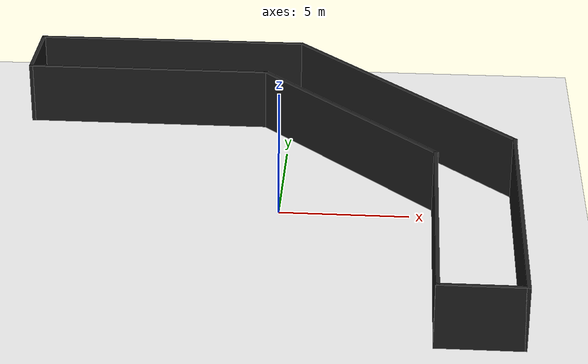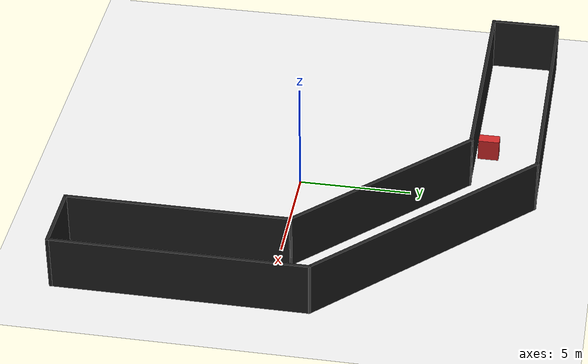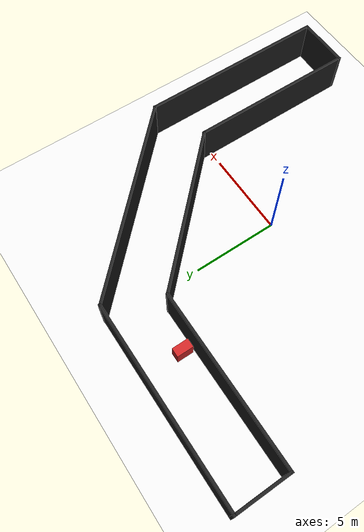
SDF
<sdf version="1.7">
 <world name="default">
  <physics type="ode">
   <real_time_factor>1</real_time_factor>
   <real_time_update_rate>250</real_time_update_rate>
   <max_step_size>0.004</max_step_size>
   <ode>
    <solver>
     <iters>20</iters>
     <type>quick</type>
     <sor>1.3</sor>
     <use_dynamic_moi_rescaling>0</use_dynamic_moi_rescaling>
    </solver>
    <constraints>
     <cfm>0</cfm>
     <erp>0.2</erp>
     <contact_max_correcting_vel>100</contact_max_correcting_vel>
     <contact_surface_layer>0.001</contact_surface_layer>
    </constraints>
   </ode>
  </physics>
  <model name="ground_plane">
   <static>1</static>
   <link name="link">
    <collision name="collision">
     <geometry><plane><normal>0 0 1</normal><size>100 100</size></plane></geometry>
     <surface>
      <contact><collide_bitmask>65535</collide_bitmask></contact>
      <friction><ode><mu>100</mu><mu2>50</mu2></ode></friction>
     </surface>
    </collision>
    <visual name="visual">
     <cast_shadows>0</cast_shadows>
     <geometry><plane><normal>0 0 1</normal><size>100 100</size></plane></geometry>
     <material>
      <script><uri>file://media/materials/scripts/gazebo.material</uri><name>Gazebo/White</name></script>
     </material>
    </visual>
   </link>
  </model>
  <light name="sun" type="directional">
   <pose>0 0 10 0 -0 0</pose>
   <diffuse>0.8 0.8 0.8 1</diffuse>
   <specular>0.2 0.2 0.2 1</specular>
   <attenuation>
    <range>1000</range>
    <constant>0.9</constant>
    <linear>0.01</linear>
    <quadratic>0.001</quadratic>
   </attenuation>
   <direction>-0.5 0.1 -0.9</direction>
   <spot><inner_angle>0</inner_angle><outer_angle>0</outer_angle><falloff>0</falloff></spot>
  </light>
  <model name="basement">
   <pose>-0.937215 0.685257 0 0 -0 0</pose>
   <link name="Wall_19">
    <collision name="Wall_19_Collision">
     <geometry><box><size>3.2 0.15 2.5</size></box></geometry>
     <pose>0 0 1.25 0 -0 0</pose>
    </collision>
    <visual name="Wall_19_Visual">
     <pose>0 0 1.25 0 -0 0</pose>
     <geometry><box><size>3.2 0.15 2.5</size></box></geometry>
     <material>
      <script><uri>file://media/materials/scripts/gazebo.material</uri><name>Gazebo/Black</name></script>
      <ambient>0.8 0.8 0.8 0.8</ambient>
     </material>
     <meta><layer>0</layer></meta>
    </visual>
    <pose>8.39205 -9.94803 0 0 -0 -3.14148</pose>
   </link>
   <link name="Wall_28">
    <collision name="Wall_28_Collision">
     <geometry><box><size>10 0.15 2.5</size></box></geometry>
     <pose>0 0 1.25 0 -0 0</pose>
    </collision>
    <visual name="Wall_28_Visual">
     <pose>0 0 1.25 0 -0 0</pose>
     <geometry><box><size>10 0.15 2.5</size></box></geometry>
     <material>
      <script><uri>file://media/materials/scripts/gazebo.material</uri><name>Gazebo/Black</name></script>
      <ambient>0.8 0.8 0.8 0.8</ambient>
     </material>
     <meta><layer>0</layer></meta>
    </visual>
    <pose>6.86705 -5.02303 0 0 -0 1.57081</pose>
   </link>
   <link name="Wall_38">
    <collision name="Wall_38_Collision">
     <geometry><box><size>11.333 0.15 2.5</size></box></geometry>
     <pose>0 0 1.25 0 -0 0</pose>
    </collision>
    <visual name="Wall_38_Visual">
     <pose>0 0 1.25 0 -0 0</pose>
     <geometry><box><size>11.333 0.15 2.5</size></box></geometry>
     <material>
      <script><uri>file://media/materials/scripts/gazebo.material</uri><name>Gazebo/Black</name></script>
      <ambient>0.8 0.8 0.8 0.8</ambient>
     </material>
     <meta><layer>0</layer></meta>
    </visual>
    <pose>9.91697 -4.35636 0 0 -0 1.5708</pose>
   </link>
   <link name="Wall_42">
    <collision name="Wall_42_Collision">
     <geometry><box><size>10 0.15 2.5</size></box></geometry>
     <pose>0 0 1.25 0 -0 0</pose>
    </collision>
    <visual name="Wall_42_Visual">
     <pose>0 0 1.25 0 -0 0</pose>
     <geometry><box><size>10 0.15 2.5</size></box></geometry>
     <material>
      <script><uri>file://media/materials/scripts/gazebo.material</uri><name>Gazebo/Black</name></script>
      <ambient>0.8 0.8 0.8 0.8</ambient>
     </material>
     <meta><layer>0</layer></meta>
    </visual>
    <pose>3.38447 3.38464 0 0 -0 2.35619</pose>
   </link>
   <link name="Wall_44">
    <collision name="Wall_44_Collision">
     <geometry><box><size>10 0.15 2.5</size></box></geometry>
     <pose>0 0 1.25 0 -0 0</pose>
    </collision>
    <visual name="Wall_44_Visual">
     <pose>0 0 1.25 0 -0 0</pose>
     <geometry><box><size>10 0.15 2.5</size></box></geometry>
     <material>
      <script><uri>file://media/materials/scripts/gazebo.material</uri><name>Gazebo/Black</name></script>
      <ambient>0.8 0.8 0.8 0.8</ambient>
     </material>
     <meta><layer>0</layer></meta>
    </visual>
    <pose>-5.02303 6.86714 0 0 -0 3.14159</pose>
   </link>
   <link name="Wall_46">
    <collision name="Wall_46_Collision">
     <geometry><box><size>3.2 0.15 2.5</size></box></geometry>
     <pose>0 0 1.25 0 -0 0</pose>
    </collision>
    <visual name="Wall_46_Visual">
     <pose>0 0 1.25 0 -0 0</pose>
     <geometry><box><size>3.2 0.15 2.5</size></box></geometry>
     <material>
      <script><uri>file://media/materials/scripts/gazebo.material</uri><name>Gazebo/Black</name></script>
      <ambient>0.8 0.8 0.8 0.8</ambient>
     </material>
     <meta><layer>0</layer></meta>
    </visual>
    <pose>-9.94803 8.39214 0 0 -0 1.5708</pose>
   </link>
   <link name="Wall_48">
    <collision name="Wall_48_Collision">
     <geometry><box><size>11.333 0.15 2.5</size></box></geometry>
     <pose>0 0 1.25 0 -0 0</pose>
    </collision>
    <visual name="Wall_48_Visual">
     <pose>0 0 1.25 0 -0 0</pose>
     <geometry><box><size>11.333 0.15 2.5</size></box></geometry>
     <material>
      <script><uri>file://media/materials/scripts/gazebo.material</uri><name>Gazebo/Black</name></script>
      <ambient>0.8 0.8 0.8 0.8</ambient>
     </material>
     <meta><layer>0</layer></meta>
    </visual>
    <pose>-4.35653 9.91714 0 0 -0 0</pose>
   </link>
   <link name="Wall_50">
    <collision name="Wall_50_Collision">
     <geometry><box><size>12.4282 0.15 2.5</size></box></geometry>
     <pose>0 0 1.25 0 -0 0</pose>
    </collision>
    <visual name="Wall_50_Visual">
     <pose>0 0 1.25 0 -0 0</pose>
     <geometry><box><size>12.4282 0.15 2.5</size></box></geometry>
     <material>
      <script><uri>file://media/materials/scripts/gazebo.material</uri><name>Gazebo/Black</name></script>
      <ambient>0.8 0.8 0.8 0.8</ambient>
     </material>
     <meta><layer>0</layer></meta>
    </visual>
    <pose>5.57597 5.57614 0 0 -0 -0.785398</pose>
   </link>
   <static>1</static>
  </model>
  <scene>
   <grid>1</grid>
   <origin_visual>1</origin_visual>
   <ambient>0.8 0.8 0.8 1</ambient>
   <shadows>1</shadows>
   <background>1 1 1 1</background>
  </scene>
  <gravity>0 0 -9.8</gravity>
  <magnetic_field>6e-06 2.3e-05 -4.2e-05</magnetic_field>
  <atmosphere type="adiabatic"/>
  <spherical_coordinates>
   <surface_model>EARTH_WGS84</surface_model>
   <latitude_deg>0</latitude_deg>
   <longitude_deg>0</longitude_deg>
   <elevation>0</elevation>
   <heading_deg>0</heading_deg>
  </spherical_coordinates>
  <model name="unit_box">
   <pose>-3.33043 8.19569 0.499943 -0.000103 -1e-06 2.5e-05</pose>
   <link name="link">
    <inertial>
     <mass>1</mass>
     <inertia>
      <ixx>0.166667</ixx>
      <ixy>0</ixy>
      <ixz>0</ixz>
      <iyy>0.166667</iyy>
      <iyz>0</iyz>
      <izz>0.166667</izz>
     </inertia>
    </inertial>
    <collision name="collision"><geometry><box><size>0.50944 0.942753 1</size></box></geometry></collision>
    <visual name="visual">
     <geometry><box><size>0.50944 0.942753 1</size></box></geometry>
     <material>
      <script><name>Gazebo/Red</name><uri>file://media/materials/scripts/gazebo.material</uri></script>
     </material>
    </visual>
   </link>
  </model>
 </world>
</sdf>
